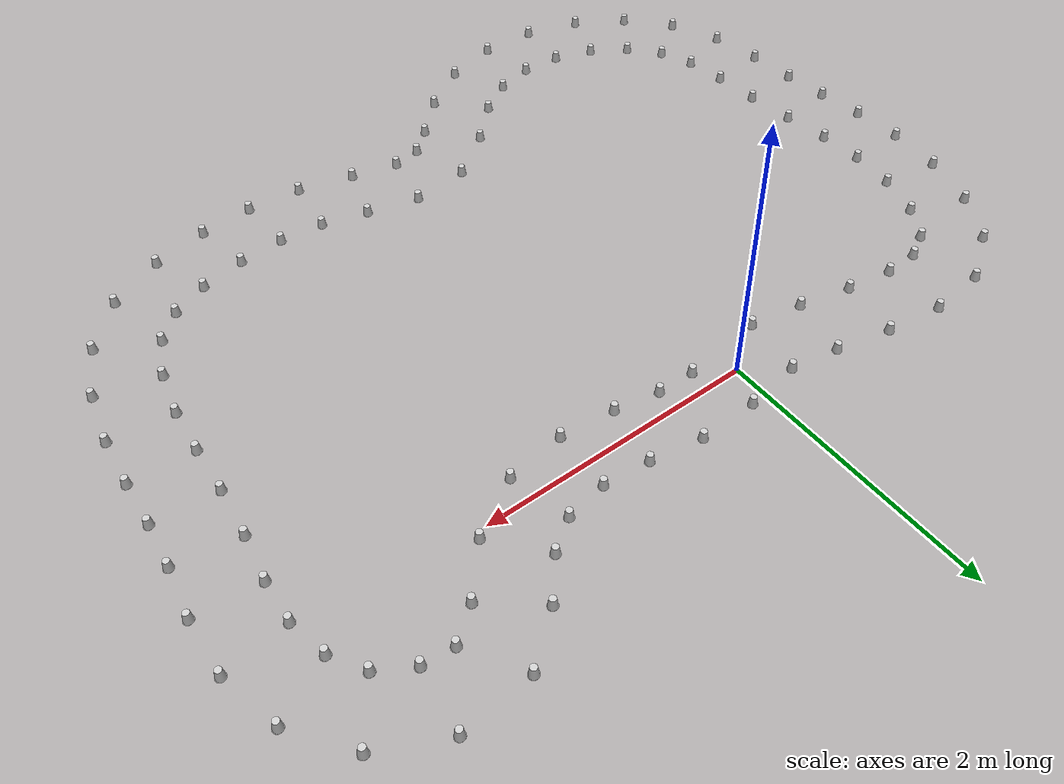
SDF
<?xml version='1.0' encoding='UTF-8'?>
<sdf version="1.4">
  <model name="some track">
    <include>
      <uri>model://cone_yellow</uri>
      <pose>0.25269366459913367 -0.15747886024092883 0 0 0 0</pose>
      <name>cone_right_0</name>
    </include>
    <include>
      <uri>model://cone_yellow</uri>
      <pose>0.5283848931734971 -0.1617881795733634 0 0 0 0</pose>
      <name>cone_right_1</name>
    </include>
    <include>
      <uri>model://cone_yellow</uri>
      <pose>0.8554535414368063 -0.22019057406107687 0 0 0 0</pose>
      <name>cone_right_2</name>
    </include>
    <include>
      <uri>model://cone_yellow</uri>
      <pose>1.2566860688085153 -0.25828959786614675 0 0 0 0</pose>
      <name>cone_right_3</name>
    </include>
    <include>
      <uri>model://cone_yellow</uri>
      <pose>1.687729158930944 -0.1910224187209481 0 0 0 0</pose>
      <name>cone_right_4</name>
    </include>
    <include>
      <uri>model://cone_yellow</uri>
      <pose>2.081345848469655 0.049093102739766914 0 0 0 0</pose>
      <name>cone_right_5</name>
    </include>
    <include>
      <uri>model://cone_yellow</uri>
      <pose>2.357257488124151 0.3675079984473031 0 0 0 0</pose>
      <name>cone_right_6</name>
    </include>
    <include>
      <uri>model://cone_yellow</uri>
      <pose>2.575295005040963 0.5372681522583022 0 0 0 0</pose>
      <name>cone_right_7</name>
    </include>
    <include>
      <uri>model://cone_yellow</uri>
      <pose>2.7931314151340723 0.5179193102912404 0 0 0 0</pose>
      <name>cone_right_8</name>
    </include>
    <include>
      <uri>model://cone_yellow</uri>
      <pose>3.02428218752797 0.37926266167157585 0 0 0 0</pose>
      <name>cone_right_9</name>
    </include>
    <include>
      <uri>model://cone_yellow</uri>
      <pose>3.16082181668724 0.15173676792421356 0 0 0 0</pose>
      <name>cone_right_10</name>
    </include>
    <include>
      <uri>model://cone_yellow</uri>
      <pose>3.218812202226872 -0.13938397698256783 0 0 0 0</pose>
      <name>cone_right_11</name>
    </include>
    <include>
      <uri>model://cone_yellow</uri>
      <pose>3.2019533751936198 -0.4512046689473376 0 0 0 0</pose>
      <name>cone_right_12</name>
    </include>
    <include>
      <uri>model://cone_yellow</uri>
      <pose>3.1492633181553074 -0.795564583035447 0 0 0 0</pose>
      <name>cone_right_13</name>
    </include>
    <include>
      <uri>model://cone_yellow</uri>
      <pose>3.111495155650466 -1.1706758541740117 0 0 0 0</pose>
      <name>cone_right_14</name>
    </include>
    <include>
      <uri>model://cone_yellow</uri>
      <pose>3.094252397408849 -1.5372081072787327 0 0 0 0</pose>
      <name>cone_right_15</name>
    </include>
    <include>
      <uri>model://cone_yellow</uri>
      <pose>3.065282211858883 -1.8897994625089214 0 0 0 0</pose>
      <name>cone_right_16</name>
    </include>
    <include>
      <uri>model://cone_yellow</uri>
      <pose>2.995828277577475 -2.2297598241354106 0 0 0 0</pose>
      <name>cone_right_17</name>
    </include>
    <include>
      <uri>model://cone_yellow</uri>
      <pose>2.868273411130065 -2.5195858951006107 0 0 0 0</pose>
      <name>cone_right_18</name>
    </include>
    <include>
      <uri>model://cone_yellow</uri>
      <pose>2.6806064865463237 -2.7085847311752627 0 0 0 0</pose>
      <name>cone_right_19</name>
    </include>
    <include>
      <uri>model://cone_yellow</uri>
      <pose>2.417267511900916 -2.823536816657961 0 0 0 0</pose>
      <name>cone_right_20</name>
    </include>
    <include>
      <uri>model://cone_yellow</uri>
      <pose>2.090876095939029 -2.8937942260209337 0 0 0 0</pose>
      <name>cone_right_21</name>
    </include>
    <include>
      <uri>model://cone_yellow</uri>
      <pose>1.7582951442240735 -2.9215778855124355 0 0 0 0</pose>
      <name>cone_right_22</name>
    </include>
    <include>
      <uri>model://cone_yellow</uri>
      <pose>1.435765153172072 -2.8947003829626627 0 0 0 0</pose>
      <name>cone_right_23</name>
    </include>
    <include>
      <uri>model://cone_yellow</uri>
      <pose>1.0984086573935272 -2.8063459506782107 0 0 0 0</pose>
      <name>cone_right_24</name>
    </include>
    <include>
      <uri>model://cone_yellow</uri>
      <pose>0.7130430821908886 -2.714382439205562 0 0 0 0</pose>
      <name>cone_right_25</name>
    </include>
    <include>
      <uri>model://cone_yellow</uri>
      <pose>0.2805260613436945 -2.7685803562691835 0 0 0 0</pose>
      <name>cone_right_26</name>
    </include>
    <include>
      <uri>model://cone_yellow</uri>
      <pose>-0.07983285321559835 -3.039842339879058 0 0 0 0</pose>
      <name>cone_right_27</name>
    </include>
    <include>
      <uri>model://cone_yellow</uri>
      <pose>-0.35521285030352434 -3.3173211321232783 0 0 0 0</pose>
      <name>cone_right_28</name>
    </include>
    <include>
      <uri>model://cone_yellow</uri>
      <pose>-0.6223358430864285 -3.48624221647995 0 0 0 0</pose>
      <name>cone_right_29</name>
    </include>
    <include>
      <uri>model://cone_yellow</uri>
      <pose>-0.9168861649825427 -3.561844820007375 0 0 0 0</pose>
      <name>cone_right_30</name>
    </include>
    <include>
      <uri>model://cone_yellow</uri>
      <pose>-1.226633729221653 -3.5509264470798683 0 0 0 0</pose>
      <name>cone_right_31</name>
    </include>
    <include>
      <uri>model://cone_yellow</uri>
      <pose>-1.528658714952844 -3.4535842850491183 0 0 0 0</pose>
      <name>cone_right_32</name>
    </include>
    <include>
      <uri>model://cone_yellow</uri>
      <pose>-1.7954112566201366 -3.2800101033998796 0 0 0 0</pose>
      <name>cone_right_33</name>
    </include>
    <include>
      <uri>model://cone_yellow</uri>
      <pose>-1.990108129987861 -3.0519473130458024 0 0 0 0</pose>
      <name>cone_right_34</name>
    </include>
    <include>
      <uri>model://cone_yellow</uri>
      <pose>-2.091935746243047 -2.789792347939042 0 0 0 0</pose>
      <name>cone_right_35</name>
    </include>
    <include>
      <uri>model://cone_yellow</uri>
      <pose>-2.137331796735697 -2.473157990305717 0 0 0 0</pose>
      <name>cone_right_36</name>
    </include>
    <include>
      <uri>model://cone_yellow</uri>
      <pose>-2.161573672394641 -2.1126588361852 0 0 0 0</pose>
      <name>cone_right_37</name>
    </include>
    <include>
      <uri>model://cone_yellow</uri>
      <pose>-2.2022931720637984 -1.7376782758932174 0 0 0 0</pose>
      <name>cone_right_38</name>
    </include>
    <include>
      <uri>model://cone_yellow</uri>
      <pose>-2.246500514369668 -1.3836301396397706 0 0 0 0</pose>
      <name>cone_right_39</name>
    </include>
    <include>
      <uri>model://cone_yellow</uri>
      <pose>-2.2621976064710156 -1.0439835140430345 0 0 0 0</pose>
      <name>cone_right_40</name>
    </include>
    <include>
      <uri>model://cone_yellow</uri>
      <pose>-2.2230106516260486 -0.7033939451024214 0 0 0 0</pose>
      <name>cone_right_41</name>
    </include>
    <include>
      <uri>model://cone_yellow</uri>
      <pose>-2.1153892658368845 -0.3756058038388119 0 0 0 0</pose>
      <name>cone_right_42</name>
    </include>
    <include>
      <uri>model://cone_yellow</uri>
      <pose>-1.9489236899903142 -0.13354103852676977 0 0 0 0</pose>
      <name>cone_right_43</name>
    </include>
    <include>
      <uri>model://cone_yellow</uri>
      <pose>-1.754250918439149 -0.03406769789839395 0 0 0 0</pose>
      <name>cone_right_44</name>
    </include>
    <include>
      <uri>model://cone_yellow</uri>
      <pose>-1.4893816635625514 -0.023713092915426004 0 0 0 0</pose>
      <name>cone_right_45</name>
    </include>
    <include>
      <uri>model://cone_yellow</uri>
      <pose>-1.1397830303505503 -0.07838834304441494 0 0 0 0</pose>
      <name>cone_right_46</name>
    </include>
    <include>
      <uri>model://cone_yellow</uri>
      <pose>-0.7508263003226385 -0.16604994424434005 0 0 0 0</pose>
      <name>cone_right_47</name>
    </include>
    <include>
      <uri>model://cone_yellow</uri>
      <pose>-0.35664224330535976 -0.23527048507330006 0 0 0 0</pose>
      <name>cone_right_48</name>
    </include>
    <include>
      <uri>model://cone_blue</uri>
      <pose>0.11997728968608855 0.27250528345502195 0 0 0 0</pose>
      <name>cone_left_0</name>
    </include>
    <include>
      <uri>model://cone_blue</uri>
      <pose>0.5581805573695426 0.2872243128977443 0 0 0 0</pose>
      <name>cone_left_1</name>
    </include>
    <include>
      <uri>model://cone_blue</uri>
      <pose>0.9383076569503923 0.2221161018352534 0 0 0 0</pose>
      <name>cone_left_2</name>
    </include>
    <include>
      <uri>model://cone_blue</uri>
      <pose>1.2765405763245645 0.1912721871326398 0 0 0 0</pose>
      <name>cone_left_3</name>
    </include>
    <include>
      <uri>model://cone_blue</uri>
      <pose>1.5783211498156375 0.24547487513254773 0 0 0 0</pose>
      <name>cone_left_4</name>
    </include>
    <include>
      <uri>model://cone_blue</uri>
      <pose>1.7954483221886597 0.3966022457366203 0 0 0 0</pose>
      <name>cone_left_5</name>
    </include>
    <include>
      <uri>model://cone_blue</uri>
      <pose>2.0099736493099214 0.6536791627851035 0 0 0 0</pose>
      <name>cone_left_6</name>
    </include>
    <include>
      <uri>model://cone_blue</uri>
      <pose>2.3400696748508123 0.920894329723989 0 0 0 0</pose>
      <name>cone_left_7</name>
    </include>
    <include>
      <uri>model://cone_blue</uri>
      <pose>2.84393032858766 0.965042861887368 0 0 0 0</pose>
      <name>cone_left_8</name>
    </include>
    <include>
      <uri>model://cone_blue</uri>
      <pose>3.2841144015982677 0.7466687320233422 0 0 0 0</pose>
      <name>cone_left_9</name>
    </include>
    <include>
      <uri>model://cone_blue</uri>
      <pose>3.559635721063551 0.36017733421619713 0 0 0 0</pose>
      <name>cone_left_10</name>
    </include>
    <include>
      <uri>model://cone_blue</uri>
      <pose>3.6643348437670586 -0.07606276509386252 0 0 0 0</pose>
      <name>cone_left_11</name>
    </include>
    <include>
      <uri>model://cone_blue</uri>
      <pose>3.650068843134653 -0.49234500671927295 0 0 0 0</pose>
      <name>cone_left_12</name>
    </include>
    <include>
      <uri>model://cone_blue</uri>
      <pose>3.593807656486185 -0.8654239507534707 0 0 0 0</pose>
      <name>cone_left_13</name>
    </include>
    <include>
      <uri>model://cone_blue</uri>
      <pose>3.560198007916654 -1.204818940856196 0 0 0 0</pose>
      <name>cone_left_14</name>
    </include>
    <include>
      <uri>model://cone_blue</uri>
      <pose>3.543807031140396 -1.5572238833189997 0 0 0 0</pose>
      <name>cone_left_15</name>
    </include>
    <include>
      <uri>model://cone_blue</uri>
      <pose>3.512990216184792 -1.935159608700392 0 0 0 0</pose>
      <name>cone_left_16</name>
    </include>
    <include>
      <uri>model://cone_blue</uri>
      <pose>3.4331688369530564 -2.335746781470046 0 0 0 0</pose>
      <name>cone_left_17</name>
    </include>
    <include>
      <uri>model://cone_blue</uri>
      <pose>3.268644001635636 -2.7250205325360257 0 0 0 0</pose>
      <name>cone_left_18</name>
    </include>
    <include>
      <uri>model://cone_blue</uri>
      <pose>2.9740033776820893 -3.0497859390744546 0 0 0 0</pose>
      <name>cone_left_19</name>
    </include>
    <include>
      <uri>model://cone_blue</uri>
      <pose>2.5778289871951783 -3.243917611475386 0 0 0 0</pose>
      <name>cone_left_20</name>
    </include>
    <include>
      <uri>model://cone_blue</uri>
      <pose>2.1717193368138377 -3.336472857089633 0 0 0 0</pose>
      <name>cone_left_21</name>
    </include>
    <include>
      <uri>model://cone_blue</uri>
      <pose>1.7810398977522852 -3.3710027136950145 0 0 0 0</pose>
      <name>cone_left_22</name>
    </include>
    <include>
      <uri>model://cone_blue</uri>
      <pose>1.380334767395324 -3.3412734143165963 0 0 0 0</pose>
      <name>cone_left_23</name>
    </include>
    <include>
      <uri>model://cone_blue</uri>
      <pose>0.9728760996848989 -3.238482013689769 0 0 0 0</pose>
      <name>cone_left_24</name>
    </include>
    <include>
      <uri>model://cone_blue</uri>
      <pose>0.6279287287370228 -3.156259737599732 0 0 0 0</pose>
      <name>cone_left_25</name>
    </include>
    <include>
      <uri>model://cone_blue</uri>
      <pose>0.4157525068146487 -3.197781717456786 0 0 0 0</pose>
      <name>cone_left_26</name>
    </include>
    <include>
      <uri>model://cone_blue</uri>
      <pose>0.22836300576362728 -3.3677376166185335 0 0 0 0</pose>
      <name>cone_left_27</name>
    </include>
    <include>
      <uri>model://cone_blue</uri>
      <pose>-0.04123995015514656 -3.6396889623613724 0 0 0 0</pose>
      <name>cone_left_28</name>
    </include>
    <include>
      <uri>model://cone_blue</uri>
      <pose>-0.40817428627641245 -3.882013397321494 0 0 0 0</pose>
      <name>cone_left_29</name>
    </include>
    <include>
      <uri>model://cone_blue</uri>
      <pose>-0.8300870467046549 -4.003394265784608 0 0 0 0</pose>
      <name>cone_left_30</name>
    </include>
    <include>
      <uri>model://cone_blue</uri>
      <pose>-1.2673550063456829 -3.9990801903303157 0 0 0 0</pose>
      <name>cone_left_31</name>
    </include>
    <include>
      <uri>model://cone_blue</uri>
      <pose>-1.6896617523834716 -3.873796162484909 0 0 0 0</pose>
      <name>cone_left_32</name>
    </include>
    <include>
      <uri>model://cone_blue</uri>
      <pose>-2.061154390977404 -3.643163771344973 0 0 0 0</pose>
      <name>cone_left_33</name>
    </include>
    <include>
      <uri>model://cone_blue</uri>
      <pose>-2.3498987766011927 -3.322226225670448 0 0 0 0</pose>
      <name>cone_left_34</name>
    </include>
    <include>
      <uri>model://cone_blue</uri>
      <pose>-2.5201769043909166 -2.928029500934071 0 0 0 0</pose>
      <name>cone_left_35</name>
    </include>
    <include>
      <uri>model://cone_blue</uri>
      <pose>-2.5845368396154886 -2.5232344281071812 0 0 0 0</pose>
      <name>cone_left_36</name>
    </include>
    <include>
      <uri>model://cone_blue</uri>
      <pose>-2.6106180980167366 -2.141969309018685 0 0 0 0</pose>
      <name>cone_left_37</name>
    </include>
    <include>
      <uri>model://cone_blue</uri>
      <pose>-2.648845003147715 -1.7932791945511046 0 0 0 0</pose>
      <name>cone_left_38</name>
    </include>
    <include>
      <uri>model://cone_blue</uri>
      <pose>-2.693449624316938 -1.4359416404531 0 0 0 0</pose>
      <name>cone_left_39</name>
    </include>
    <include>
      <uri>model://cone_blue</uri>
      <pose>-2.712129414457309 -1.051817297432012 0 0 0 0</pose>
      <name>cone_left_40</name>
    </include>
    <include>
      <uri>model://cone_blue</uri>
      <pose>-2.6675640529197198 -0.6335922732153656 0 0 0 0</pose>
      <name>cone_left_41</name>
    </include>
    <include>
      <uri>model://cone_blue</uri>
      <pose>-2.5354775103839797 -0.21428045929140438 0 0 0 0</pose>
      <name>cone_left_42</name>
    </include>
    <include>
      <uri>model://cone_blue</uri>
      <pose>-2.2997637838952913 0.1482589410842066 0 0 0 0</pose>
      <name>cone_left_43</name>
    </include>
    <include>
      <uri>model://cone_blue</uri>
      <pose>-1.9268471352331877 0.38151688548793095 0 0 0 0</pose>
      <name>cone_left_44</name>
    </include>
    <include>
      <uri>model://cone_blue</uri>
      <pose>-1.4884145655561478 0.4262858678849808 0 0 0 0</pose>
      <name>cone_left_45</name>
    </include>
    <include>
      <uri>model://cone_blue</uri>
      <pose>-1.0581000819489634 0.36413611496940346 0 0 0 0</pose>
      <name>cone_left_46</name>
    </include>
    <include>
      <uri>model://cone_blue</uri>
      <pose>-0.6506848020672746 0.27266600067579955 0 0 0 0</pose>
      <name>cone_left_47</name>
    </include>
    <include>
      <uri>model://cone_blue</uri>
      <pose>-0.2921903552596714 0.21008999153788965 0 0 0 0</pose>
      <name>cone_left_48</name>
    </include>

  </model>
</sdf>

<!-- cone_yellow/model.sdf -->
<sdf version='1.4'>
  <model name="cone_yellow">
    <link name="link">
    <collision name="collision"><geometry><box><size> 0.05 0.05 0.01</size>
             </box></geometry></collision>
      <visual name="visual">
        <geometry>
          <mesh>
            <uri>model://cup.dae</uri>
            <scale>1 1 1</scale>
          </mesh>
        </geometry>
        <material>
            <script>
              <uri>model://cone_yellow/materials/scripts</uri>
              <uri>model://cone_yellow/materials/textures</uri>
              <name>cone_yellow/Image</name>
            </script>
        </material>
      </visual>
    </link>
  </model>
</sdf>

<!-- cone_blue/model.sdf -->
<sdf version='1.4'>
  <model name="cone_blue">
    <link name="link">
    <collision name="collision"><geometry><box><size> 0.05 0.05 0.01</size>
             </box></geometry></collision>
      <visual name="visual">
        <geometry>
          <mesh>
            <uri>model://cup.dae</uri>
            <scale>1 1 1</scale>
          </mesh>
        </geometry>
        <material>
            <script>
              <uri>model://cone_blue/materials/scripts</uri>
              <uri>model://cone_blue/materials/textures</uri>
              <name>cone_blue/Image</name>
            </script>
        </material>
      </visual>
    </link>
  </model>
</sdf>
